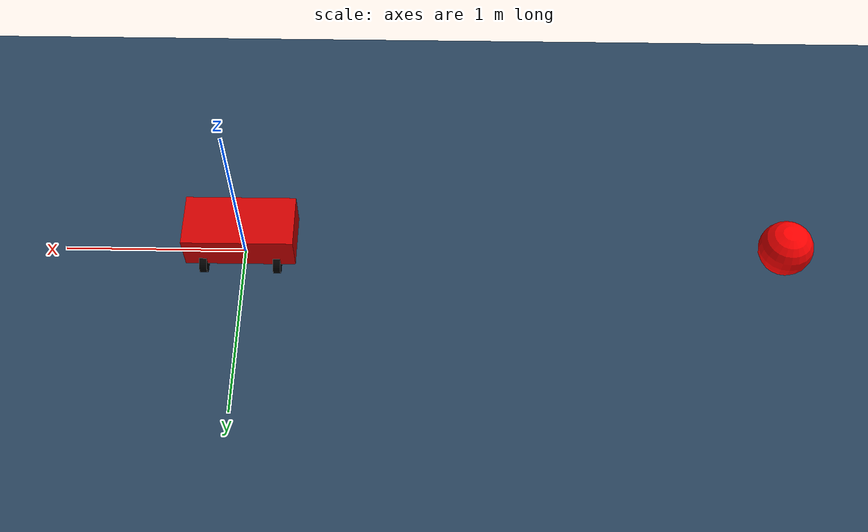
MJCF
<mujoco>
  <option timestep="0.01" integrator="RK4"/>
  <asset>
    <texture type="skybox" builtin="gradient" rgb1="0.3 0.5 0.7" rgb2="0 0 0" width="512" height="512"/>
    <texture name="plane" type="2d" builtin="checker" rgb1="0.2 0.3 0.4" rgb2="0.1 0.2 0.3" width="512" height="512" mark="edge" markrgb="0.8 0.8 0.8"/>
    <material name="plane" texture="plane" texrepeat="1 1" texuniform="true" reflectance="0.2"/>
    <material name="red" rgba="0.8 0 0 1"/>
    <material name="black" rgba="0 0 0 1"/>
  </asset>

  <worldbody>
    <!-- Piso -->
    <geom name="floor" type="plane" size="50 50 0.1" material="plane" friction="1 0.005 0.0001"/>

    <!-- Cuerpo del coche -->
    <body name="car" pos="0 0 0.1">
      <geom name="chassis" type="box" size="0.3 0.15 0.1" material="red" pos="0 0 0.1"/>

      <!-- Rueda frontal izquierda -->
      <body name="wheel_fl" pos="0.2 0.15 0">
        <joint name="joint_fl" type="hinge" axis="0 1 0" damping="0.1"/>
        <geom name="wheel_fl_geom" type="cylinder" size="0.05 0.02" material="black" friction="1 0.005 0.0001" euler="0 90 0"/>
      </body>

      <!-- Rueda frontal derecha -->
      <body name="wheel_fr" pos="0.2 -0.15 0">
        <joint name="joint_fr" type="hinge" axis="0 1 0" damping="0.1"/>
        <geom name="wheel_fr_geom" type="cylinder" size="0.05 0.02" material="black" friction="1 0.005 0.0001" euler="0 90 0"/>
      </body>

      <!-- Rueda trasera izquierda -->
      <body name="wheel_rl" pos="-0.2 0.15 0">
        <joint name="joint_rl" type="hinge" axis="0 1 0" damping="0.1"/>
        <geom name="wheel_rl_geom" type="cylinder" size="0.05 0.02" material="black" friction="1 0.005 0.0001" euler="0 90 0"/>
      </body>

      <!-- Rueda trasera derecha -->
      <body name="wheel_rr" pos="-0.2 -0.15 0">
        <joint name="joint_rr" type="hinge" axis="0 1 0" damping="0.1"/>
        <geom name="wheel_rr_geom" type="cylinder" size="0.05 0.02" material="black" friction="1 0.005 0.0001" euler="0 90 0"/>
      </body>
    </body>

    <!-- Objetivo (target) -->
    <site name="target" pos="-3 0 0.09" size="0.15 0.15 0.15" rgba="1 0 0 1" type="sphere"/>
  </worldbody>

  <actuator>
    <!-- Motores para las ruedas -->
    <motor joint="joint_fl" name="motor_fl" gear="150" ctrlrange="-1 1"/>
    <motor joint="joint_fr" name="motor_fr" gear="150" ctrlrange="-1 1"/>
    <motor joint="joint_rl" name="motor_rl" gear="150" ctrlrange="-1 1"/>
    <motor joint="joint_rr" name="motor_rr" gear="150" ctrlrange="-1 1"/>
  </actuator>
</mujoco>
